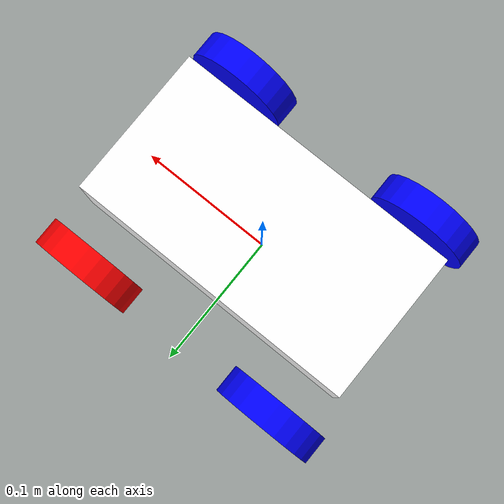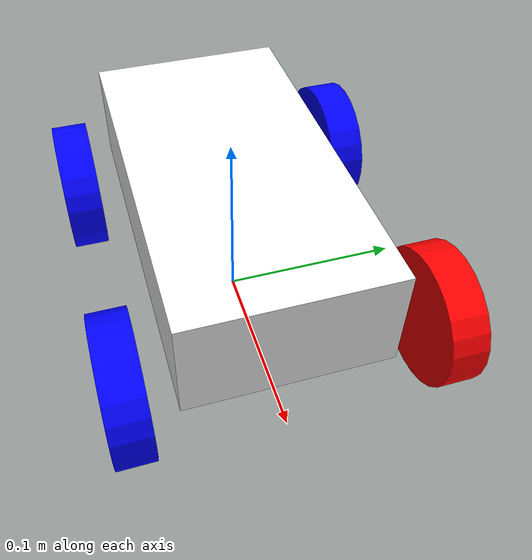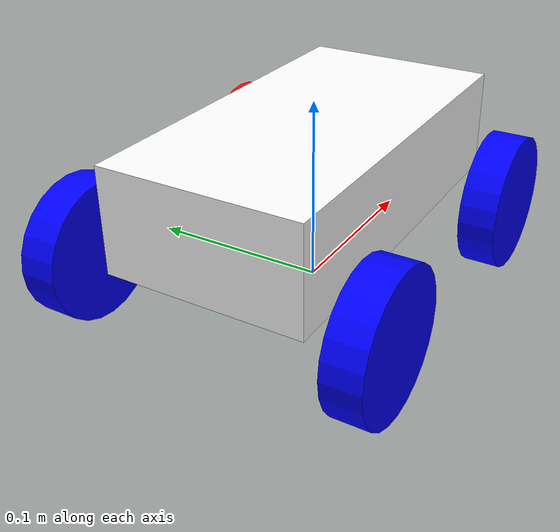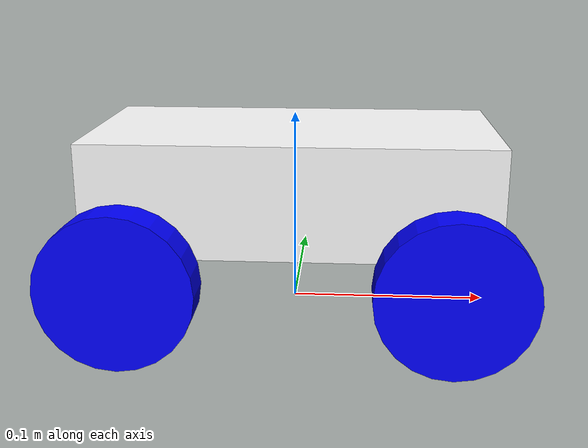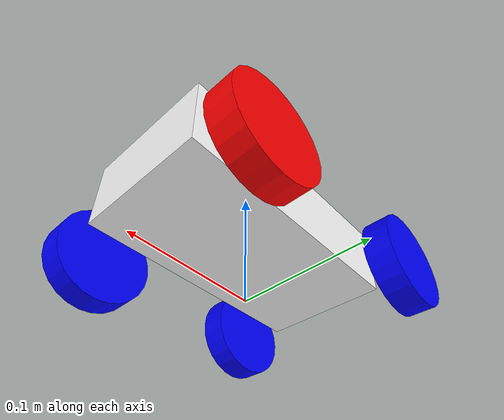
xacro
<?xml version="1.0"?>
<robot xmlns:xacro="http://www.ros.org/wiki/xacro"  name="robot">
    <xacro:property name="pi" value="3.14159265359" />

    <material name="white">
        <color rgba="1.0 1.0 1.0 1.0" />
    </material>

    <material name="orange">
        <color rgba="1.0 0.5 0.0 1.0" />
    </material>

    <material name="blue">
        <color rgba="0.0 0.0 1.0 1.0" />
    </material>

    <material name="green">
        <color rgba="0.0 1.0 0.0 1.0" />
    </material>

    <material name="red">
        <color rgba="1.0 0.0 0.0 1.0" />
    </material>

    <!-- 바퀴 치수 -->
    <xacro:property name="wheel_diameter" value="0.0745" />
    <xacro:property name="wheel_radius" value="${wheel_diameter/2}" />

    <!-- 바퀴 두께 -->
    <xacro:property name="wheel_width" value="0.02" />

    <!-- base_link 기준 바퀴 위치 -->
    <xacro:property name="base_link_to_wheel_x" value="0.077" />
    <xacro:property name="base_link_to_wheel_y" value="0.0235" />
    <xacro:property name="base_link_to_wheel_z" value="-0.00602" />

    <xacro:property name="box_x" value="0.203" />
    <xacro:property name="box_y" value="0.106" />
    <xacro:property name="box_z" value="0.056" />

    <!-- BASE_FOOTPRINT: 지면 기준 고정 프레임 (내비게이션, TF 트리용) -->
    <link name="base_footprint" />

    <!-- BASE_FOOTPRINT -> BASE_LINK: base_link는 바퀴 반지름(0.05)만큼 지면 위 -->
    <joint name="base_footprint_joint" type="fixed">
        <parent link="base_footprint" />
        <child link="base_link" />
        <origin xyz="0 0 ${wheel_radius}" rpy="0 0 0" />
    </joint>

    <!-- BASE_LINK -->
    <link name="base_link">

    </link>

    <!-- CHASSIS_LINK -->
    <joint name="chassis_joint" type="fixed">
        <parent link="base_link" />
        <child link="chassis" />
        <origin xyz="-${box_x/2} 0 0" rpy="0 0 0" />
    </joint>

    <link name="chassis">
        <visual>
            <origin xyz="${box_x/2} 0.0 ${box_z/2}" rpy="0 0 0" />
            <geometry>
                <box size="${box_x} ${box_y} ${box_z}" />
            </geometry>
            <material name="white" />
        </visual>
    </link>

    <!-- LEFT_FRONT_WHEEL_LINK -->
    <joint name="left_front_wheel_joint" type="continuous">
        <parent link="chassis" />
        <child link="left_front_wheel" />
        <origin xyz="${base_link_to_wheel_x+box_x/2} ${base_link_to_wheel_y+box_y/2+wheel_width/2} ${base_link_to_wheel_z}" rpy="-${pi/2} 0 0" />
        <axis xyz="0 0 1" />
    </joint>

    <link name="left_front_wheel">
        <visual>
            <geometry>
                <cylinder radius="${wheel_radius}" length="${wheel_width}" />
            </geometry>
            <material name="red" />
        </visual>
    </link>

    <!-- LEFT_REAR_WHEEL_LINK -->

    <joint name="left_rear_wheel_joint" type="continuous">
        <parent link="chassis" />
        <child link="left_rear_wheel" />
        <origin xyz="${box_x/2-base_link_to_wheel_x} ${base_link_to_wheel_y+box_y/2+wheel_width/2} ${base_link_to_wheel_z}" rpy="-${pi/2} 0 0" />
        <axis xyz="0 0 1" />
    </joint>

    <link name="left_rear_wheel">
        <visual>
            <geometry>
                <cylinder radius="${wheel_radius}" length="${wheel_width}" />
            </geometry>
            <material name="blue" />
        </visual>
    </link>

    <!-- RIGHT_FRONT_WHEEL_LINK -->
    <joint name="right_front_wheel_joint" type="continuous">
        <parent link="chassis" />
        <child link="right_front_wheel" />
        <origin xyz="${box_x/2+base_link_to_wheel_x} -${base_link_to_wheel_y+box_y/2} ${base_link_to_wheel_z}" rpy="-${pi/2} 0 0" />
        <axis xyz="0 0 1" />
    </joint>

    <link name="right_front_wheel">
        <visual>
            <geometry>
                <cylinder radius="${wheel_radius}" length="${wheel_width}" />
            </geometry>
            <material name="blue" />
        </visual>
    </link>

    <!-- RIGHT_REAR_WHEEL_LINK -->

    <joint name="right_rear_wheel_joint" type="continuous">
        <parent link="chassis" />
        <child link="right_rear_wheel" />
        <origin xyz="${box_x/2-base_link_to_wheel_x} -${base_link_to_wheel_y+box_y/2} ${base_link_to_wheel_z}" rpy="-${pi/2} 0 0" />
        <axis xyz="0 0 1" />
    </joint>

    <link name="right_rear_wheel">
        <visual>
            <geometry>
                <cylinder radius="${wheel_radius}" length="${wheel_width}" />
            </geometry>
            <material name="blue" />
        </visual>
    </link>

</robot>
